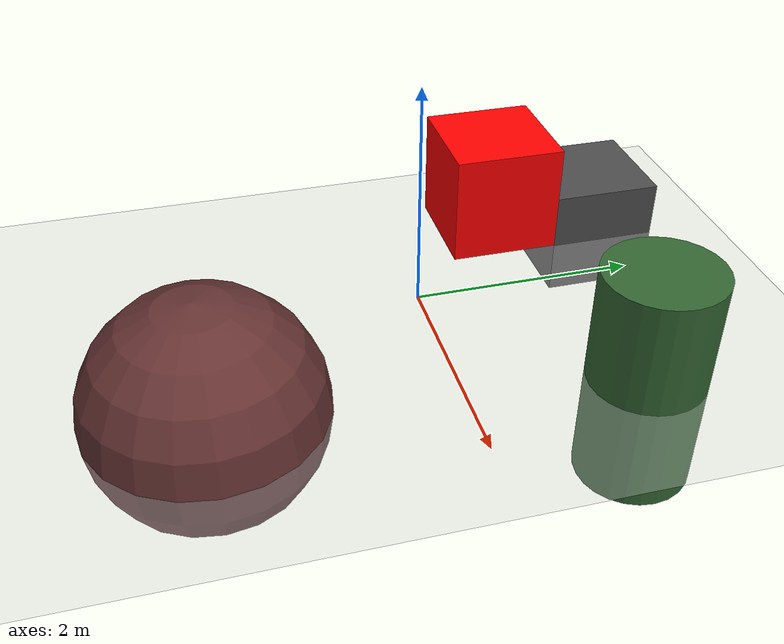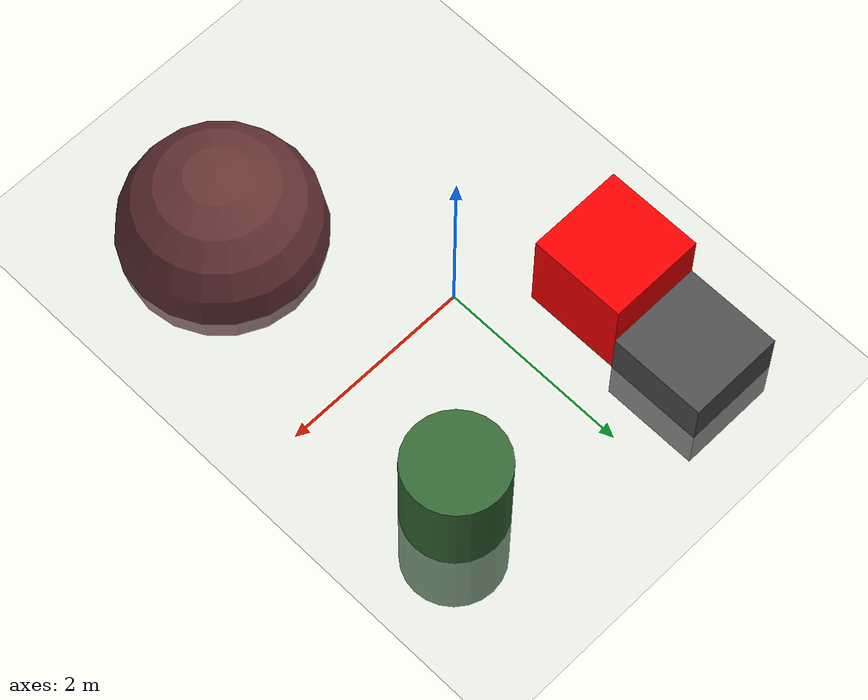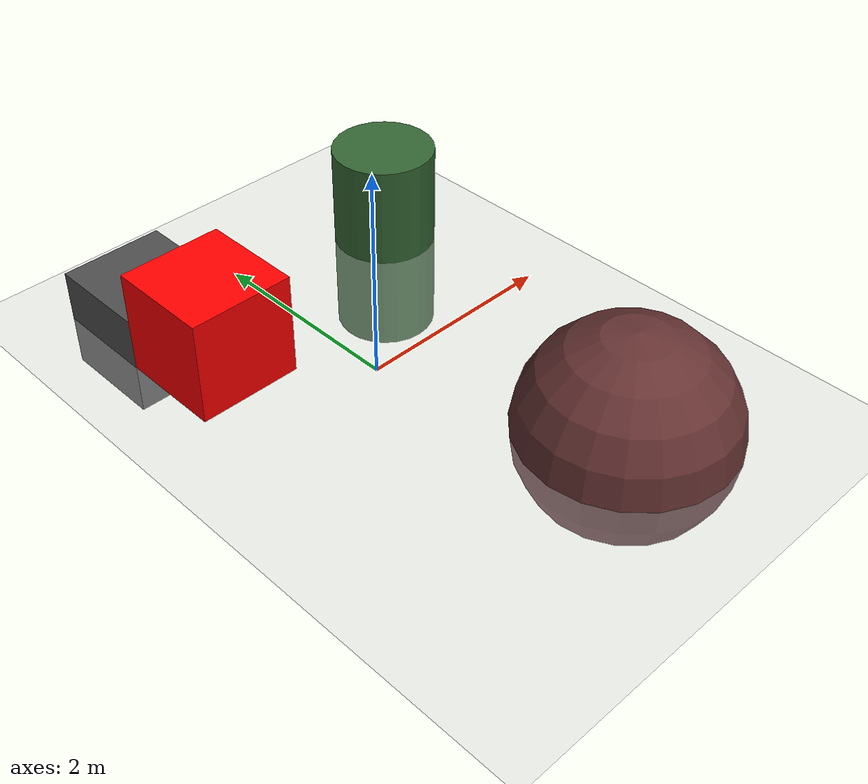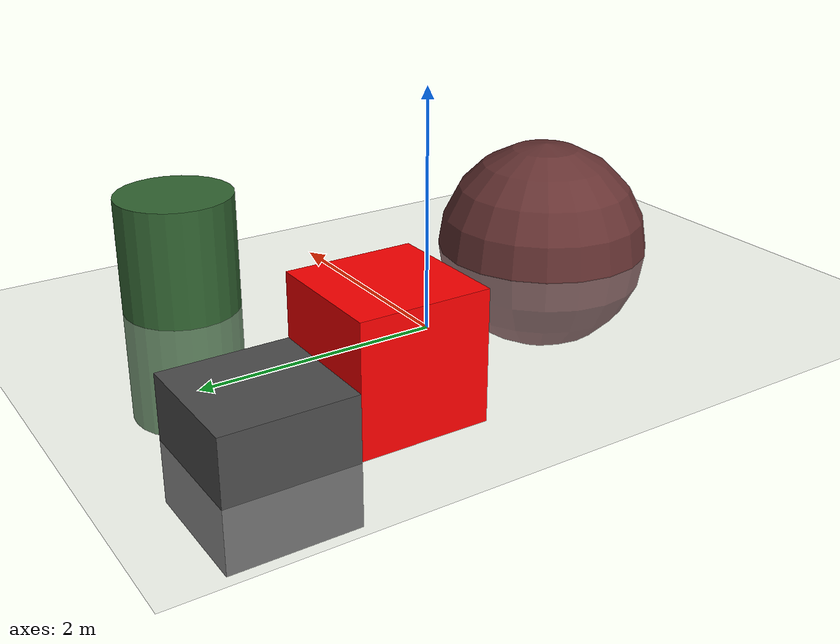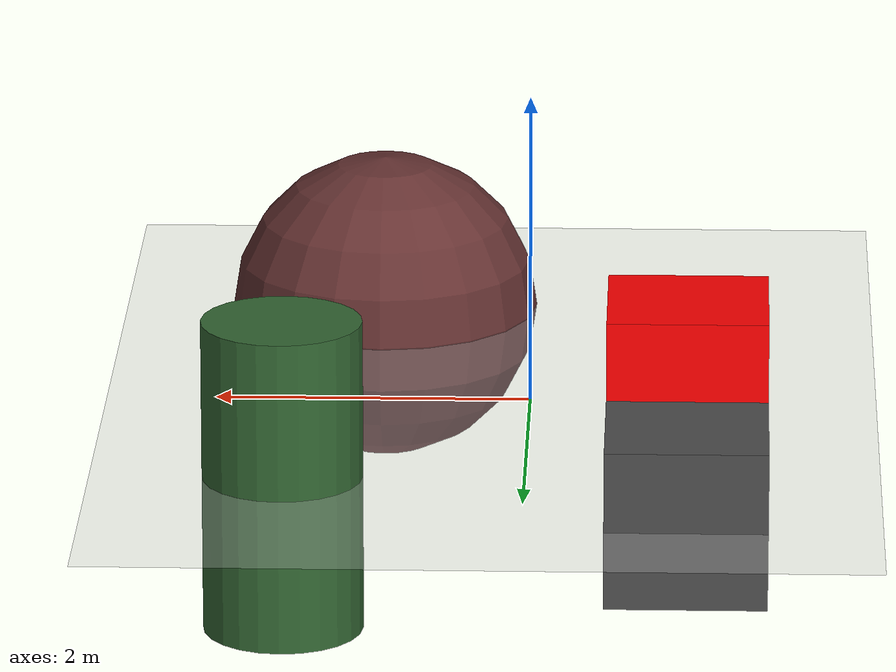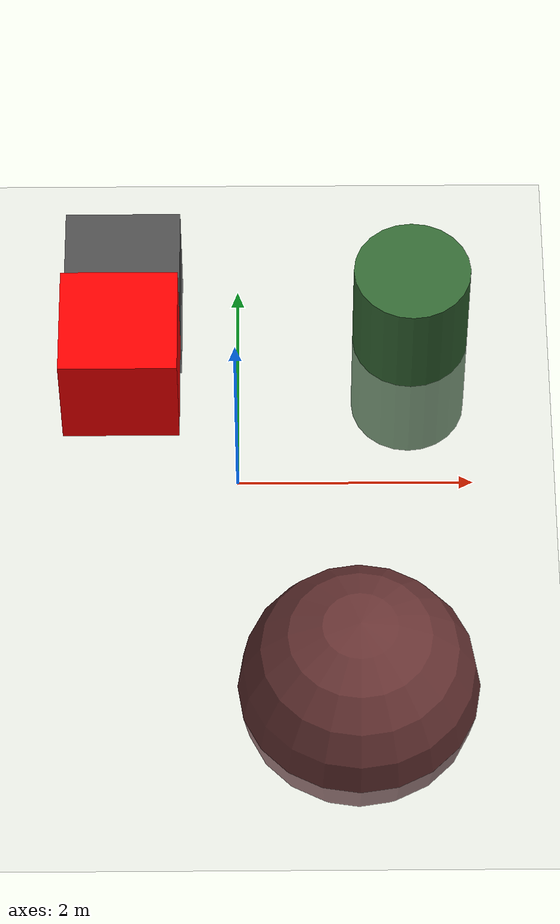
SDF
<?xml version="1.0" encoding="UTF-8"?>
<sdf version="1.9">
  <world name="temp">
    <physics type="ode">
      <max_step_size>0.004</max_step_size>
      <real_time_factor>1.0</real_time_factor>
      <real_time_update_rate>250</real_time_update_rate>
    </physics>
    <plugin name="gz::sim::systems::Physics" filename="gz-sim-physics-system"/>
    <plugin name="gz::sim::systems::UserCommands" filename="gz-sim-user-commands-system"/>
    <plugin name="gz::sim::systems::SceneBroadcaster" filename="gz-sim-scene-broadcaster-system"/>
    <plugin name="gz::sim::systems::Contact" filename="gz-sim-contact-system"/>
    <plugin name="gz::sim::systems::Imu" filename="gz-sim-imu-system"/>
    <plugin name="gz::sim::systems::AirPressure" filename="gz-sim-air-pressure-system"/>
    <plugin name="gz::sim::systems::ApplyLinkWrench" filename="gz-sim-apply-link-wrench-system"/>
    <plugin name="gz::sim::systems::NavSat" filename="gz-sim-navsat-system"/>
    <plugin name="gz::sim::systems::Sensors" filename="gz-sim-sensors-system">
      <render_engine>ogre2</render_engine>
    </plugin>
    <gui fullscreen="false">
      <!-- 3D scene -->
      <plugin filename="MinimalScene" name="3D View">
        <gz-gui>
          <title>3D View</title>
          <property type="bool" key="showTitleBar">false</property>
          <property type="string" key="state">docked</property>
        </gz-gui>
        <engine>ogre2</engine>
        <scene>scene</scene>
        <ambient_light>0.4 0.4 0.4</ambient_light>
        <background_color>0.8 0.8 0.8</background_color>
        <camera_pose>-6 0 6 0 0.5 0</camera_pose>
        <camera_clip>
          <near>0.25</near>
          <far>25000</far>
        </camera_clip>
      </plugin>
      <!-- Plugins that add functionality to the scene -->
      <plugin filename="EntityContextMenuPlugin" name="Entity context menu">
        <gz-gui>
          <property key="state" type="string">floating</property>
          <property key="width" type="double">5</property>
          <property key="height" type="double">5</property>
          <property key="showTitleBar" type="bool">false</property>
        </gz-gui>
      </plugin>
      <plugin filename="GzSceneManager" name="Scene Manager">
        <gz-gui>
          <property key="resizable" type="bool">false</property>
          <property key="width" type="double">5</property>
          <property key="height" type="double">5</property>
          <property key="state" type="string">floating</property>
          <property key="showTitleBar" type="bool">false</property>
        </gz-gui>
      </plugin>
      <plugin filename="InteractiveViewControl" name="Interactive view control">
        <gz-gui>
          <property key="resizable" type="bool">false</property>
          <property key="width" type="double">5</property>
          <property key="height" type="double">5</property>
          <property key="state" type="string">floating</property>
          <property key="showTitleBar" type="bool">false</property>
        </gz-gui>
      </plugin>
      <plugin filename="CameraTracking" name="Camera Tracking">
        <gz-gui>
          <property key="resizable" type="bool">false</property>
          <property key="width" type="double">5</property>
          <property key="height" type="double">5</property>
          <property key="state" type="string">floating</property>
          <property key="showTitleBar" type="bool">false</property>
        </gz-gui>
      </plugin>
      <plugin filename="MarkerManager" name="Marker manager">
        <gz-gui>
          <property key="resizable" type="bool">false</property>
          <property key="width" type="double">5</property>
          <property key="height" type="double">5</property>
          <property key="state" type="string">floating</property>
          <property key="showTitleBar" type="bool">false</property>
        </gz-gui>
      </plugin>
      <plugin filename="SelectEntities" name="Select Entities">
        <gz-gui>
          <anchors target="Select entities">
            <line own="right" target="right"/>
            <line own="top" target="top"/>
          </anchors>
          <property key="resizable" type="bool">false</property>
          <property key="width" type="double">5</property>
          <property key="height" type="double">5</property>
          <property key="state" type="string">floating</property>
          <property key="showTitleBar" type="bool">false</property>
        </gz-gui>
      </plugin>
      <plugin filename="VisualizationCapabilities" name="Visualization Capabilities">
        <gz-gui>
          <property key="resizable" type="bool">false</property>
          <property key="width" type="double">5</property>
          <property key="height" type="double">5</property>
          <property key="state" type="string">floating</property>
          <property key="showTitleBar" type="bool">false</property>
        </gz-gui>
      </plugin>
      <plugin filename="Spawn" name="Spawn Entities">
        <gz-gui>
          <anchors target="Select entities">
            <line own="right" target="right"/>
            <line own="top" target="top"/>
          </anchors>
          <property key="resizable" type="bool">false</property>
          <property key="width" type="double">5</property>
          <property key="height" type="double">5</property>
          <property key="state" type="string">floating</property>
          <property key="showTitleBar" type="bool">false</property>
        </gz-gui>
      </plugin>
      <plugin name="World control" filename="WorldControl">
        <gz-gui>
          <title>World control</title>
          <property type="bool" key="showTitleBar">0</property>
          <property type="bool" key="resizable">0</property>
          <property type="double" key="height">72</property>
          <property type="double" key="width">121</property>
          <property type="double" key="z">1</property>
          <property type="string" key="state">floating</property>
          <anchors target="3D View">
            <line own="left" target="left"/>
            <line own="bottom" target="bottom"/>
          </anchors>
        </gz-gui>
        <play_pause>1</play_pause>
        <step>1</step>
        <start_paused>1</start_paused>
      </plugin>
      <plugin name="World stats" filename="WorldStats">
        <gz-gui>
          <title>World stats</title>
          <property type="bool" key="showTitleBar">0</property>
          <property type="bool" key="resizable">0</property>
          <property type="double" key="height">110</property>
          <property type="double" key="width">290</property>
          <property type="double" key="z">1</property>
          <property type="string" key="state">floating</property>
          <anchors target="3D View">
            <line own="right" target="right"/>
            <line own="bottom" target="bottom"/>
          </anchors>
        </gz-gui>
        <sim_time>1</sim_time>
        <real_time>1</real_time>
        <real_time_factor>1</real_time_factor>
        <iterations>1</iterations>
      </plugin>
      <plugin name="Entity tree" filename="EntityTree"/>
    </gui>
    <gravity>0 0 -9.8</gravity>
    <magnetic_field>6e-06 2.3e-05 -4.2e-05</magnetic_field>
    <atmosphere type="adiabatic"/>
    <scene>
      <grid>false</grid>
      <ambient>0.4 0.4 0.4 1</ambient>
      <background>0.7 0.7 0.7 1</background>
      <shadows>true</shadows>
    </scene>
    <model name="ground_plane">
      <static>true</static>
      <link name="link">
        <inertial>
          <inertia>
            <ixx>0.16666</ixx>
            <ixy>0</ixy>
            <ixz>0</ixz>
            <iyy>0.16666</iyy>
            <iyz>0</iyz>
            <izz>0.16666</izz>
          </inertia>
          <mass>10</mass>
          <pose>0 0 0 0 0 0</pose>
        </inertial>
        <collision name="collision">
          <geometry>
            <plane>
              <normal>0 0 1</normal>
              <size>1 1</size>
            </plane>
          </geometry>
          <surface>
            <friction>
              <ode/>
            </friction>
            <bounce/>
            <contact/>
          </surface>
        </collision>
        <visual name="visual">
          <geometry>
            <plane>
              <normal>0 0 1</normal>
              <size>100 100</size>
            </plane>
          </geometry>
          <material>
            <ambient>0.8 0.8 0.8 1</ambient>
            <diffuse>0.8 0.8 0.8 1</diffuse>
            <specular>0.8 0.8 0.8 1</specular>
          </material>
        </visual>
	<thermal>
          <temperature>300</temperature>
        </thermal>
        <pose>0 0 0 0 -0 0</pose>
        <inertial>
          <pose>0 0 0 0 -0 0</pose>
          <mass>1</mass>
          <inertia>
            <ixx>1</ixx>
            <ixy>0</ixy>
            <ixz>0</ixz>
            <iyy>1</iyy>
            <iyz>0</iyz>
            <izz>1</izz>
          </inertia>
        </inertial>
        <enable_wind>false</enable_wind>
      </link>
      <pose>0 0 0 0 -0 0</pose>
      <self_collide>false</self_collide>
    </model>

<model name="box">
  <pose>-1 1 0.5 0 0 0</pose>
  <link name="box_link">
    <inertial>
      <inertia>
        <ixx>1</ixx>
        <ixy>0</ixy>
        <ixz>0</ixz>
        <iyy>1</iyy>
        <iyz>0</iyz>
        <izz>1</izz>
      </inertia>
      <mass>1.0</mass>
    </inertial>
    <collision name="box_collision">
      <geometry>
        <box>
          <size>1 1 1</size>
        </box>
      </geometry>
    </collision>
    <visual name="box_visual">
      <geometry>
        <box>
          <size>1 1 1</size>
        </box>
      </geometry>
      <material>
        <ambient>1 0 0 1</ambient>
        <diffuse>1 0 0 1</diffuse>
        <specular>1 0 0 1</specular>
      </material>
      <plugin
        filename="ignition-gazebo-thermal-system"
        name="gz::sim::systems::Thermal">
        <temperature>285.0</temperature>
      </plugin>
    </visual>
  </link>
</model>

    <!-- Object 1 -->
    <model name="object1">
      <pose>-1 2 0 0 0 0</pose>
      <static>true</static>
      <link name="link">
        <collision name="collision">
          <geometry>
            <box>
              <size>1 1 1</size>
            </box>
          </geometry>
        </collision>
        <visual name="visual">
          <geometry>
            <box>
              <size>1 1 1</size>
            </box>
          </geometry>
          <material>
            <ambient>0.3 0.3 0.3 1</ambient>
          </material>
        </visual>
        <thermal>
          <temperature>300</temperature>
        </thermal>
      </link>
    </model>

    <!-- Object 2 -->
    <model name="object2">
      <pose>1 -2 0 0 0 0</pose>
      <static>true</static>
      <link name="link">
        <collision name="collision">
          <geometry>
            <sphere>
              <radius>1</radius>
            </sphere>
          </geometry>
        </collision>
        <visual name="visual">
          <geometry>
            <sphere>
              <radius>1</radius>
            </sphere>
          </geometry>
          <material>
            <ambient>0.4 0.2 0.2 1</ambient>
          </material>
        </visual>
        <thermal>
          <temperature>350</temperature>
        </thermal>
      </link>
    </model>

    <!-- Object 3 -->
    <model name="object3">
      <pose>1.5 1.5 0 0 0 0</pose>
      <static>true</static>
      <link name="link">
        <collision name="collision">
          <geometry>
            <cylinder>
              <radius>0.5</radius>
              <length>2</length>
            </cylinder>
          </geometry>
        </collision>
        <visual name="visual">
          <geometry>
            <cylinder>
              <radius>0.5</radius>
              <length>2</length>
            </cylinder>
          </geometry>
          <material>
            <ambient>0.2 0.4 0.2 1</ambient>
          </material>
        </visual>
        <thermal>
          <temperature>400</temperature>
        </thermal>
      </link>
    </model>

    <light name="sunUTC" type="directional">
      <pose>0 0 500 0 -0 0</pose>
      <cast_shadows>true</cast_shadows>
      <intensity>1</intensity>
      <direction>0.001 0.625 -0.78</direction>
      <diffuse>0.904 0.904 0.904 1</diffuse>
      <specular>0.271 0.271 0.271 1</specular>
      <attenuation>
        <range>2000</range>
        <linear>0</linear>
        <constant>1</constant>
        <quadratic>0</quadratic>
      </attenuation>
      <spot>
        <inner_angle>0</inner_angle>
        <outer_angle>0</outer_angle>
        <falloff>0</falloff>
      </spot>
    </light>
    <spherical_coordinates>
      <surface_model>EARTH_WGS84</surface_model>
      <world_frame_orientation>ENU</world_frame_orientation>
      <latitude_deg>47.397971057728974</latitude_deg>
      <longitude_deg> 8.546163739800146</longitude_deg>
      <elevation>0</elevation>
    </spherical_coordinates>
  </world>
</sdf>
